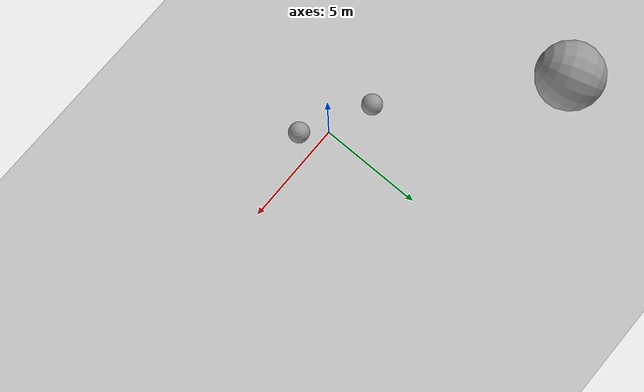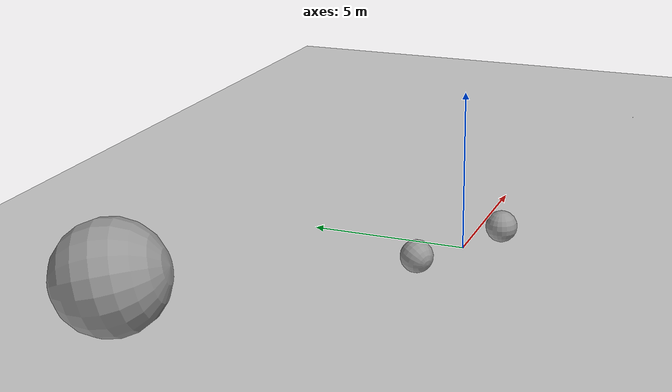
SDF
<sdf version="1.6">
 <world name="default">
  <light name="sun" type="directional">
   <pose>0 0 10 0 -0 0</pose>
   <diffuse>0.8 0.8 0.8 1</diffuse>
   <specular>0.1 0.1 0.1 1</specular>
   <attenuation>
    <range>1000</range>
    <constant>0.9</constant>
    <linear>0.01</linear>
    <quadratic>0.001</quadratic>
   </attenuation>
   <direction>-0.5 0.5 -1</direction>
  </light>
  <model name="ground_plane">
   <static>1</static>
   <link name="link">
    <collision name="collision">
     <geometry><plane><normal>0 0 1</normal><size>100 100</size></plane></geometry>
     <surface><friction><ode><mu>100</mu><mu2>50</mu2></ode></friction></surface>
    </collision>
    <visual name="visual">
     <cast_shadows>0</cast_shadows>
     <geometry><plane><normal>0 0 1</normal><size>100 100</size></plane></geometry>
     <material>
      <script><uri>file://media/materials/scripts/gazebo.material</uri><name>Gazebo/Grey</name></script>
     </material>
    </visual>
   </link>
  </model>
  <gravity>0 0 -9.8</gravity>
  <magnetic_field>6e-06 2.3e-05 -4.2e-05</magnetic_field>
  <atmosphere type="adiabatic"/>
  <physics name="default_physics" default="0" type="ode">
   <max_step_size>0.001</max_step_size>
   <real_time_factor>1</real_time_factor>
   <real_time_update_rate>1000</real_time_update_rate>
  </physics>
  <scene><ambient>0.4 0.4 0.4 1</ambient><background>0.7 0.7 0.7 1</background><shadows>1</shadows></scene>
  <spherical_coordinates>
   <surface_model>EARTH_WGS84</surface_model>
   <latitude_deg>0</latitude_deg>
   <longitude_deg>0</longitude_deg>
   <elevation>0</elevation>
   <heading_deg>0</heading_deg>
  </spherical_coordinates>
  <model name="metal_peg">
   <link name="link">
    <pose>0 0 0.031 0 -0 0</pose>
    <inertial>
     <mass>0.0121</mass>
     <inertia>
      <ixx>3.90898e-06</ixx>
      <ixy>0</ixy>
      <ixz>0</ixz>
      <iyy>3.90898e-06</iyy>
      <iyz>0</iyz>
      <izz>6.58845e-08</izz>
     </inertia>
    </inertial>
    <collision name="collision">
     <geometry><cylinder><radius>0.0033</radius><length>0.062</length></cylinder></geometry>
     <surface>
      <contact>
       <poissons_ratio>0.305</poissons_ratio>
       <elastic_modulus>2e+11</elastic_modulus>
       <ode><kp>100000</kp><kd>100</kd><max_vel>100</max_vel><min_depth>0.001</min_depth></ode>
      </contact>
      <friction>
       <torsional>
        <coefficient>1</coefficient>
        <use_patch_radius>0</use_patch_radius>
        <surface_radius>0.01</surface_radius>
       </torsional>
      </friction>
     </surface>
    </collision>
    <visual name="visual">
     <geometry><cylinder><radius>0.0033</radius><length>0.062</length></cylinder></geometry>
     <material>
      <script><uri>file://media/materials/scripts/gazebo.material</uri><name>Gazebo/Grey</name></script>
     </material>
    </visual>
   </link>
   <pose>16.0318 -2.5428 -0.001 -5e-06 5e-06 -1e-06</pose>
  </model>
  <model name="unit_sphere_0">
   <pose>-8.71087 6.9226 1.61663 1.30238 0.708982 0.172208</pose>
   <link name="link">
    <inertial>
     <mass>1</mass>
     <inertia><ixx>0.1</ixx><ixy>0</ixy><ixz>0</ixz><iyy>0.1</iyy><iyz>0</iyz><izz>0.1</izz></inertia>
    </inertial>
    <collision name="collision"><geometry><sphere><radius>1.61663</radius></sphere></geometry></collision>
    <visual name="visual">
     <geometry><sphere><radius>1.61663</radius></sphere></geometry>
     <material>
      <script><name>Gazebo/Grey</name><uri>file://media/materials/scripts/gazebo.material</uri></script>
     </material>
    </visual>
   </link>
  </model>
  <model name="unit_sphere_1">
   <pose>0.951314 -0.95877 0.5 0 -0 0</pose>
   <link name="link">
    <inertial>
     <mass>1</mass>
     <inertia><ixx>0.1</ixx><ixy>0</ixy><ixz>0</ixz><iyy>0.1</iyy><iyz>0</iyz><izz>0.1</izz></inertia>
    </inertial>
    <collision name="collision"><geometry><sphere><radius>0.5</radius></sphere></geometry></collision>
    <visual name="visual">
     <geometry><sphere><radius>0.5</radius></sphere></geometry>
     <material>
      <script><name>Gazebo/Grey</name><uri>file://media/materials/scripts/gazebo.material</uri></script>
     </material>
    </visual>
   </link>
  </model>
  <model name="unit_sphere_2">
   <pose>-2.20291 0.756695 0.5 2.076 0.895372 -0.057103</pose>
   <link name="link">
    <inertial>
     <mass>1</mass>
     <inertia><ixx>0.1</ixx><ixy>0</ixy><ixz>0</ixz><iyy>0.1</iyy><iyz>0</iyz><izz>0.1</izz></inertia>
    </inertial>
    <collision name="collision"><geometry><sphere><radius>0.5</radius></sphere></geometry></collision>
    <visual name="visual">
     <geometry><sphere><radius>0.5</radius></sphere></geometry>
     <material>
      <script><name>Gazebo/Grey</name><uri>file://media/materials/scripts/gazebo.material</uri></script>
     </material>
    </visual>
   </link>
  </model>
 </world>
</sdf>
